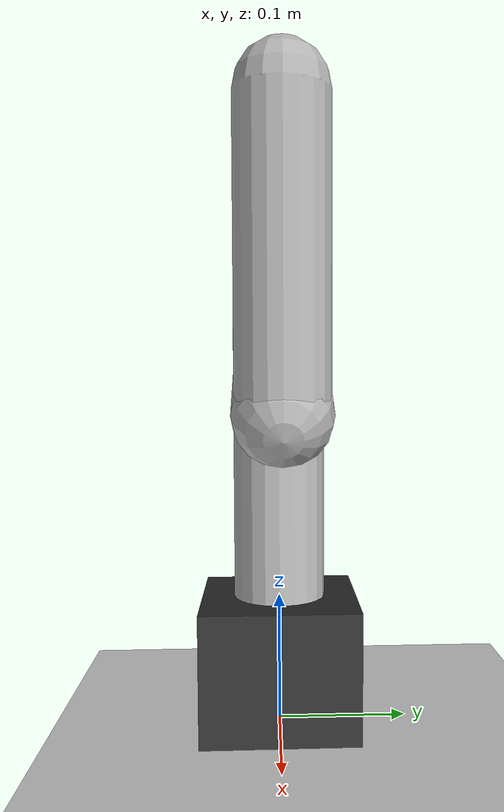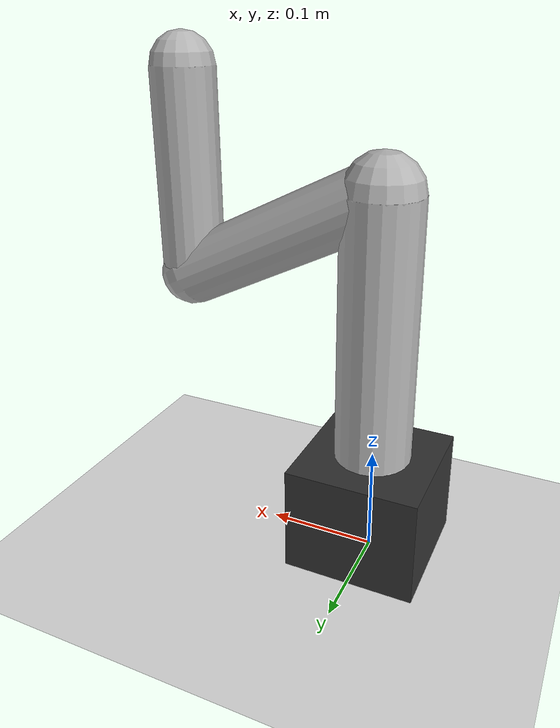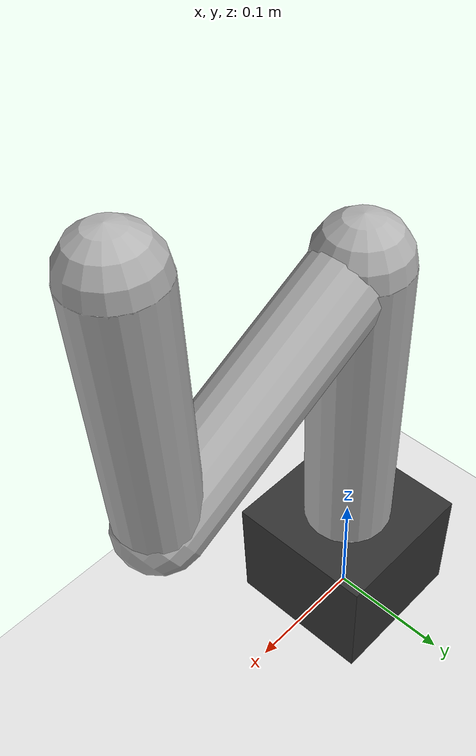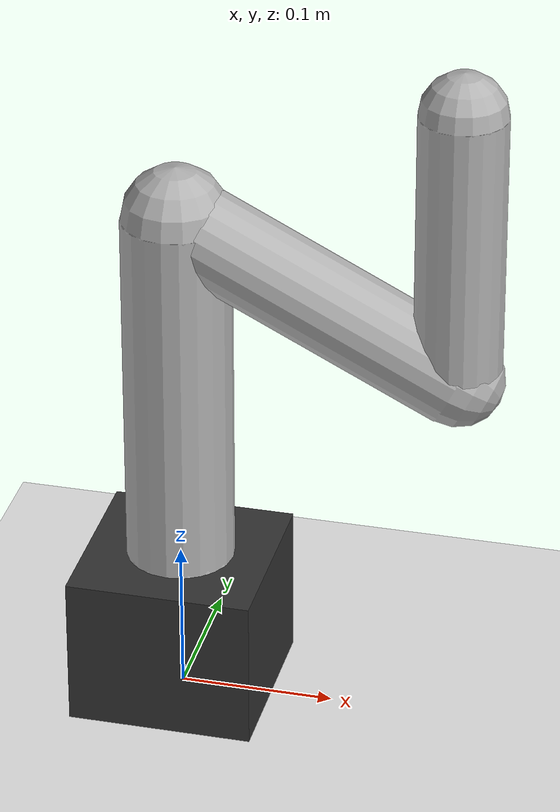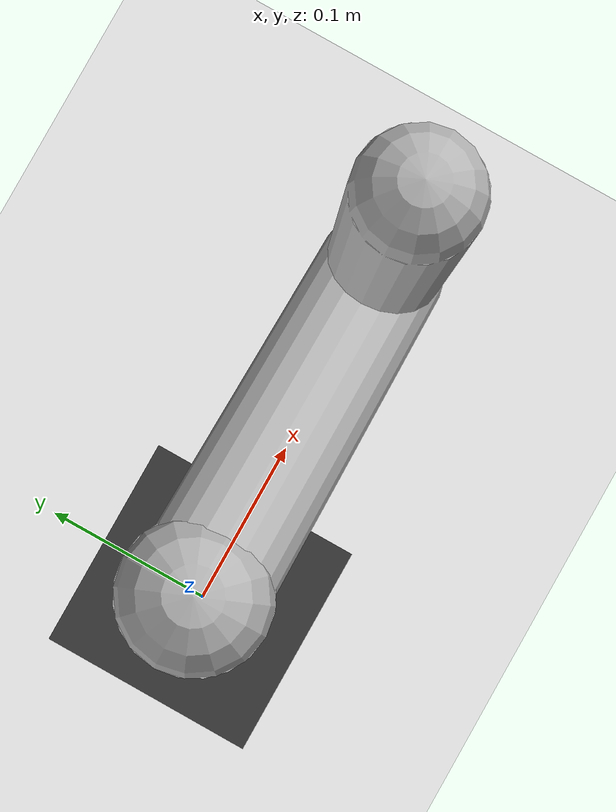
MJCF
<mujoco model="demo_arm_3dof">
  <compiler angle="radian" coordinate="local" inertiafromgeom="true"/>
  <option gravity="0 0 -9.81" timestep="0.002" integrator="RK4"/>

  <default>
    <joint limited="true" damping="1.0" armature="0.01" stiffness="10"/>
    <geom type="capsule" size="0.03 0.12" rgba="0.7 0.7 0.7 1" material="arm"/>
  </default>

  <asset>
    <texture name="sky" type="skybox" builtin="gradient" width="256" height="256"
             rgb1="0.7 0.8 0.95" rgb2="0.2 0.25 0.35"/>
    <material name="arm" texture="sky" texrepeat="1 1" reflectance="0.05"
              specular="0.3" shininess="0.6"/>
  </asset>

  <worldbody>
    <light name="top" pos="0 0 2.0" dir="0 0 -1" diffuse="1 1 1" specular="0.3 0.3 0.3"/>
    <geom name="floor" type="plane" size="2 2 0.1" rgba="0.9 0.9 0.9 1"/>

    <body name="base" pos="0 0 0.05">
      <geom type="box" size="0.06 0.06 0.05" rgba="0.2 0.2 0.2 1"/>

      <body name="link1" pos="0 0 0.05">
        <joint name="joint1" type="hinge" axis="0 0 1" range="-2.5 2.5"/>
        <geom fromto="0 0 0 0 0 0.24" size="0.035"/>

        <body name="link2" pos="0 0 0.24" euler="0 90 0">
          <joint name="joint2" type="hinge" axis="0 0 1" range="-1.8 1.8"/>
          <geom fromto="0 0 0 0 0 0.20" size="0.03"/>

          <body name="link3" pos="0 0 0.20" euler="0 -90 0">
            <joint name="joint3" type="hinge" axis="0 0 1" range="-2.4 2.4"/>
            <geom fromto="0 0 0 0 0 0.18" size="0.028"/>
            <site name="ee" pos="0 0 0.18" size="0.01" rgba="0 0.5 1 0"/>
          </body>
        </body>
      </body>
    </body>
  </worldbody>
</mujoco>
